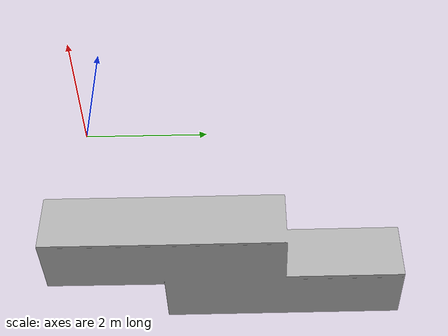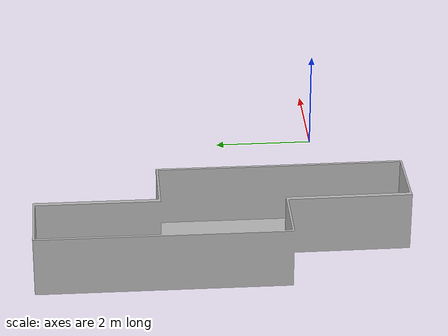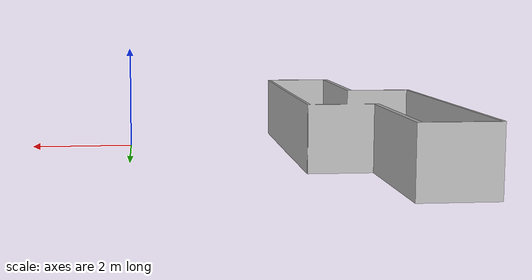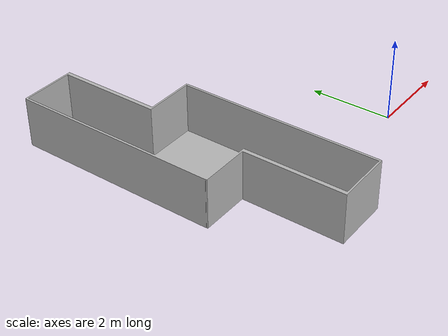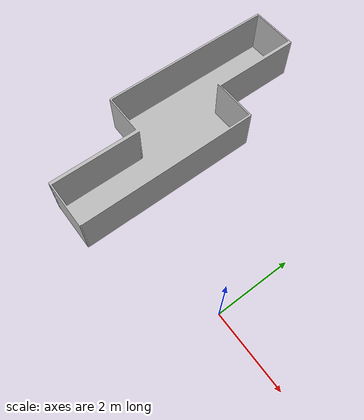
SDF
<?xml version="1.0" ?>
<sdf version="1.6">
  <model name="default_plane">
    <static>true</static>
    <pose>-1 0 0 1.5708 0 0</pose>
    <link name="link">
      <collision name="collision">
        <geometry>
          <mesh>
            <scale>0.001 0.001 0.001</scale>
            <uri>model://default_plane/default_plane.stl</uri>
          </mesh>
        </geometry>
        <surface>
          <friction>
            <ode>
              <mu>100</mu>
              <mu2>50</mu2>
            </ode>
          </friction>
        </surface>
      </collision>
      <visual name="visual">
        <geometry>
          <mesh>
            <scale>0.001 0.001 0.001</scale>
            <uri>model://default_plane/default_plane.stl</uri>
          </mesh>
        </geometry>
      </visual>
    </link>
  </model>
</sdf>
